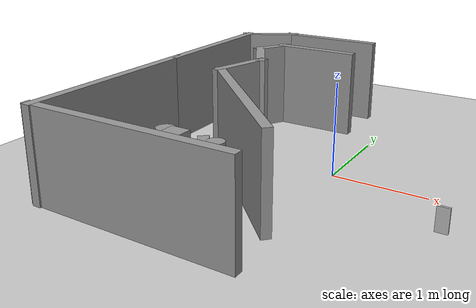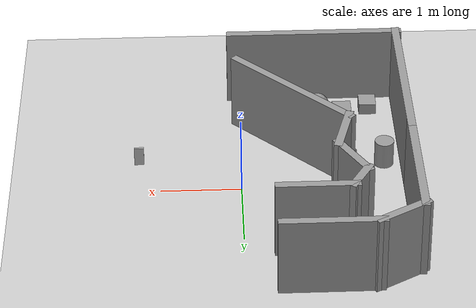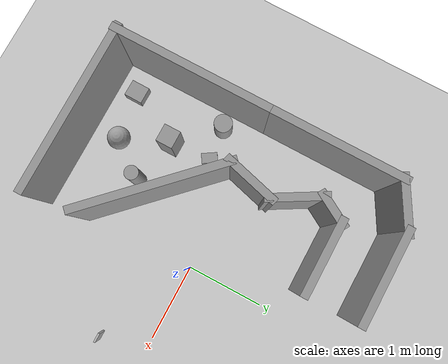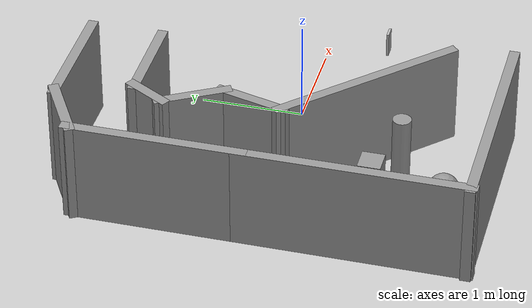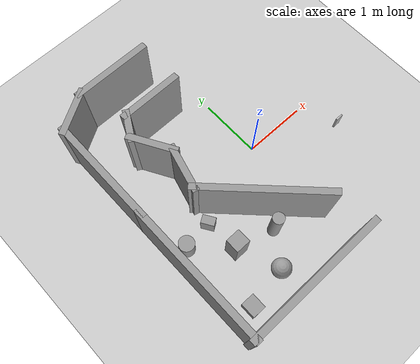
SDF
<sdf version="1.7">
 <world name="capstone_project">
  <scene>
   <ambient>0 0 0 1</ambient>
   <shadows>0</shadows>
   <grid>0</grid>
   <background>0.7 0.7 0.7 1</background>
  </scene>
  <light name="sun" type="directional">
   <pose>0 0 10 0 -0 0</pose>
   <diffuse>0.8 0.8 0.8 1</diffuse>
   <specular>0.1 0.1 0.1 1</specular>
   <attenuation>
    <range>1000</range>
    <constant>0.9</constant>
    <linear>0.01</linear>
    <quadratic>0.001</quadratic>
   </attenuation>
   <direction>-0.5 0.5 -1</direction>
   <spot><inner_angle>0</inner_angle><outer_angle>0</outer_angle><falloff>0</falloff></spot>
  </light>
  <gravity>0 0 -9.8</gravity>
  <magnetic_field>6e-06 2.3e-05 -4.2e-05</magnetic_field>
  <atmosphere type="adiabatic"/>
  <physics name="default_physics" default="0" type="ode">
   <max_step_size>0.001</max_step_size>
   <real_time_factor>1</real_time_factor>
   <real_time_update_rate>1000</real_time_update_rate>
  </physics>
  <spherical_coordinates>
   <surface_model>EARTH_WGS84</surface_model>
   <latitude_deg>0</latitude_deg>
   <longitude_deg>0</longitude_deg>
   <elevation>0</elevation>
   <heading_deg>0</heading_deg>
  </spherical_coordinates>
  <light name="user_point_light_2" type="point">
   <pose>-0.948146 0.604519 1 0 -0 0</pose>
   <diffuse>0.5 0.5 0.5 1</diffuse>
   <specular>0.1 0.1 0.1 1</specular>
   <attenuation>
    <range>20</range>
    <constant>0.5</constant>
    <linear>0.01</linear>
    <quadratic>0.001</quadratic>
   </attenuation>
   <cast_shadows>0</cast_shadows>
   <direction>0 0 -1</direction>
   <spot><inner_angle>0</inner_angle><outer_angle>0</outer_angle><falloff>0</falloff></spot>
  </light>
  <light name="user_point_light_6" type="point">
   <pose>1.63854 1.69565 1 0 -0 0</pose>
   <diffuse>0.5 0.5 0.5 1</diffuse>
   <specular>0.1 0.1 0.1 1</specular>
   <attenuation>
    <range>20</range>
    <constant>0.5</constant>
    <linear>0.01</linear>
    <quadratic>0.001</quadratic>
   </attenuation>
   <cast_shadows>0</cast_shadows>
   <direction>0 0 -1</direction>
   <spot><inner_angle>0</inner_angle><outer_angle>0</outer_angle><falloff>0</falloff></spot>
  </light>
  <light name="user_point_light_7" type="point">
   <pose>0.42 -3.31 1 0 -0 0</pose>
   <diffuse>0.5 0.5 0.5 1</diffuse>
   <specular>0.1 0.1 0.1 1</specular>
   <attenuation>
    <range>20</range>
    <constant>0.5</constant>
    <linear>0.01</linear>
    <quadratic>0.001</quadratic>
   </attenuation>
   <cast_shadows>0</cast_shadows>
   <direction>0 0 -1</direction>
   <spot><inner_angle>0</inner_angle><outer_angle>0</outer_angle><falloff>0</falloff></spot>
  </light>
  <light name="user_point_light_8" type="point">
   <pose>-1.8 1.5 1 0 -0 0</pose>
   <diffuse>0.5 0.5 0.5 1</diffuse>
   <specular>0.1 0.1 0.1 1</specular>
   <attenuation>
    <range>20</range>
    <constant>0.5</constant>
    <linear>0.01</linear>
    <quadratic>0.001</quadratic>
   </attenuation>
   <cast_shadows>0</cast_shadows>
   <direction>0 0 -1</direction>
   <spot><inner_angle>0</inner_angle><outer_angle>0</outer_angle><falloff>0</falloff></spot>
  </light>
  <model name="walls">
   <link name="Wall_10">
    <pose>0.35664 -0.75882 0 0 -0 2.35619</pose>
    <inertial>
     <mass>1</mass>
     <inertia><ixx>1</ixx><ixy>0</ixy><ixz>0</ixz><iyy>1</iyy><iyz>0</iyz><izz>1</izz></inertia>
    </inertial>
    <visual name="Wall_10_Visual">
     <pose>0 0 0.5 0 -0 0</pose>
     <geometry><box><size>2 0.1 1</size></box></geometry>
     <material>
      <script><uri>file://media/materials/scripts/gazebo.material</uri><name>Gazebo/Grey</name></script>
      <ambient>1 1 1 1</ambient>
      <shader type="pixel"><normal_map>__default__</normal_map></shader>
     </material>
    </visual>
    <collision name="Wall_10_Collision">
     <pose>0 0 0.5 0 -0 0</pose>
     <geometry><box><size>2 0.1 1</size></box></geometry>
     <surface>
      <friction>
       <ode><mu>1</mu><mu2>1</mu2><fdir1>0 0 0</fdir1><slip1>0</slip1><slip2>0</slip2></ode>
       <torsional>
        <coefficient>1</coefficient>
        <patch_radius>0</patch_radius>
        <surface_radius>0</surface_radius>
        <use_patch_radius>1</use_patch_radius>
        <ode><slip>0</slip></ode>
       </torsional>
      </friction>
      <bounce><restitution_coefficient>0</restitution_coefficient><threshold>1e+06</threshold></bounce>
      <contact>
       <collide_without_contact>0</collide_without_contact>
       <collide_without_contact_bitmask>1</collide_without_contact_bitmask>
       <collide_bitmask>1</collide_bitmask>
       <ode>
        <soft_cfm>0</soft_cfm>
        <soft_erp>0.2</soft_erp>
        <kp>1e+13</kp>
        <kd>1</kd>
        <max_vel>0.01</max_vel>
        <min_depth>0</min_depth>
       </ode>
       <bullet>
        <split_impulse>1</split_impulse>
        <split_impulse_penetration_threshold>-0.01</split_impulse_penetration_threshold>
        <soft_cfm>0</soft_cfm>
        <soft_erp>0.2</soft_erp>
        <kp>1e+13</kp>
        <kd>1</kd>
       </bullet>
      </contact>
     </surface>
    </collision>
   </link>
   <link name="Wall_12">
    <pose>0.01372 -2.01873 0 0 -0 3.14159</pose>
    <visual name="Wall_12_Visual">
     <pose>0 0 0.5 0 -0 0</pose>
     <geometry><box><size>2.26002 0.1 1</size></box></geometry>
     <material>
      <script><uri>file://media/materials/scripts/gazebo.material</uri><name>Gazebo/Grey</name></script>
      <ambient>1 1 1 1</ambient>
      <shader type="pixel"/>
     </material>
    </visual>
    <collision name="Wall_12_Collision">
     <pose>0 0 0.5 0 -0 0</pose>
     <geometry><box><size>2.26002 0.1 1</size></box></geometry>
     <surface>
      <friction>
       <ode><mu>1</mu><mu2>1</mu2><fdir1>0 0 0</fdir1><slip1>0</slip1><slip2>0</slip2></ode>
       <torsional>
        <coefficient>1</coefficient>
        <patch_radius>0</patch_radius>
        <surface_radius>0</surface_radius>
        <use_patch_radius>1</use_patch_radius>
        <ode><slip>0</slip></ode>
       </torsional>
      </friction>
      <bounce><restitution_coefficient>0</restitution_coefficient><threshold>1e+06</threshold></bounce>
      <contact>
       <collide_without_contact>0</collide_without_contact>
       <collide_without_contact_bitmask>1</collide_without_contact_bitmask>
       <collide_bitmask>1</collide_bitmask>
       <ode>
        <soft_cfm>0</soft_cfm>
        <soft_erp>0.2</soft_erp>
        <kp>1e+13</kp>
        <kd>1</kd>
        <max_vel>0.01</max_vel>
        <min_depth>0</min_depth>
       </ode>
       <bullet>
        <split_impulse>1</split_impulse>
        <split_impulse_penetration_threshold>-0.01</split_impulse_penetration_threshold>
        <soft_cfm>0</soft_cfm>
        <soft_erp>0.2</soft_erp>
        <kp>1e+13</kp>
        <kd>1</kd>
       </bullet>
      </contact>
     </surface>
    </collision>
   </link>
   <link name="Wall_13">
    <pose>-1.04128 -0.958726 0 0 -0 1.5708</pose>
    <visual name="Wall_13_Visual">
     <pose>0 0 0.5 0 -0 0</pose>
     <geometry><box><size>2.25 0.1 1</size></box></geometry>
     <material>
      <script><uri>file://media/materials/scripts/gazebo.material</uri><name>Gazebo/Grey</name></script>
      <ambient>1 1 1 1</ambient>
      <shader type="pixel"/>
     </material>
    </visual>
    <collision name="Wall_13_Collision">
     <pose>0 0 0.5 0 -0 0</pose>
     <geometry><box><size>2.25 0.1 1</size></box></geometry>
     <surface>
      <friction>
       <ode><mu>1</mu><mu2>1</mu2><fdir1>0 0 0</fdir1><slip1>0</slip1><slip2>0</slip2></ode>
       <torsional>
        <coefficient>1</coefficient>
        <patch_radius>0</patch_radius>
        <surface_radius>0</surface_radius>
        <use_patch_radius>1</use_patch_radius>
        <ode><slip>0</slip></ode>
       </torsional>
      </friction>
      <bounce><restitution_coefficient>0</restitution_coefficient><threshold>1e+06</threshold></bounce>
      <contact>
       <collide_without_contact>0</collide_without_contact>
       <collide_without_contact_bitmask>1</collide_without_contact_bitmask>
       <collide_bitmask>1</collide_bitmask>
       <ode>
        <soft_cfm>0</soft_cfm>
        <soft_erp>0.2</soft_erp>
        <kp>1e+13</kp>
        <kd>1</kd>
        <max_vel>0.01</max_vel>
        <min_depth>0</min_depth>
       </ode>
       <bullet>
        <split_impulse>1</split_impulse>
        <split_impulse_penetration_threshold>-0.01</split_impulse_penetration_threshold>
        <soft_cfm>0</soft_cfm>
        <soft_erp>0.2</soft_erp>
        <kp>1e+13</kp>
        <kd>1</kd>
       </bullet>
      </contact>
     </surface>
    </collision>
   </link>
   <link name="Wall_19">
    <pose>-1.04128 0.891274 0 0 -0 1.5708</pose>
    <visual name="Wall_19_Visual">
     <pose>0 0 0.5 0 -0 0</pose>
     <geometry><box><size>1.75 0.1 1</size></box></geometry>
     <material>
      <script><uri>file://media/materials/scripts/gazebo.material</uri><name>Gazebo/Grey</name></script>
      <ambient>1 1 1 1</ambient>
      <shader type="pixel"/>
     </material>
    </visual>
    <collision name="Wall_19_Collision">
     <pose>0 0 0.5 0 -0 0</pose>
     <geometry><box><size>1.75 0.1 1</size></box></geometry>
     <surface>
      <friction>
       <ode><mu>1</mu><mu2>1</mu2><fdir1>0 0 0</fdir1><slip1>0</slip1><slip2>0</slip2></ode>
       <torsional>
        <coefficient>1</coefficient>
        <patch_radius>0</patch_radius>
        <surface_radius>0</surface_radius>
        <use_patch_radius>1</use_patch_radius>
        <ode><slip>0</slip></ode>
       </torsional>
      </friction>
      <bounce><restitution_coefficient>0</restitution_coefficient><threshold>1e+06</threshold></bounce>
      <contact>
       <collide_without_contact>0</collide_without_contact>
       <collide_without_contact_bitmask>1</collide_without_contact_bitmask>
       <collide_bitmask>1</collide_bitmask>
       <ode>
        <soft_cfm>0</soft_cfm>
        <soft_erp>0.2</soft_erp>
        <kp>1e+13</kp>
        <kd>1</kd>
        <max_vel>0.01</max_vel>
        <min_depth>0</min_depth>
       </ode>
       <bullet>
        <split_impulse>1</split_impulse>
        <split_impulse_penetration_threshold>-0.01</split_impulse_penetration_threshold>
        <soft_cfm>0</soft_cfm>
        <soft_erp>0.2</soft_erp>
        <kp>1e+13</kp>
        <kd>1</kd>
       </bullet>
      </contact>
     </surface>
    </collision>
   </link>
   <link name="Wall_21">
    <pose>-0.781472 1.84127 0 0 -0 0.523599</pose>
    <visual name="Wall_21_Visual">
     <pose>0 0 0.5 0 -0 0</pose>
     <geometry><box><size>0.75 0.1 1</size></box></geometry>
     <material>
      <script><uri>file://media/materials/scripts/gazebo.material</uri><name>Gazebo/Grey</name></script>
      <ambient>1 1 1 1</ambient>
      <shader type="pixel"/>
     </material>
    </visual>
    <collision name="Wall_21_Collision">
     <pose>0 0 0.5 0 -0 0</pose>
     <geometry><box><size>0.75 0.1 1</size></box></geometry>
     <surface>
      <friction>
       <ode><mu>1</mu><mu2>1</mu2><fdir1>0 0 0</fdir1><slip1>0</slip1><slip2>0</slip2></ode>
       <torsional>
        <coefficient>1</coefficient>
        <patch_radius>0</patch_radius>
        <surface_radius>0</surface_radius>
        <use_patch_radius>1</use_patch_radius>
        <ode><slip>0</slip></ode>
       </torsional>
      </friction>
      <bounce><restitution_coefficient>0</restitution_coefficient><threshold>1e+06</threshold></bounce>
      <contact>
       <collide_without_contact>0</collide_without_contact>
       <collide_without_contact_bitmask>1</collide_without_contact_bitmask>
       <collide_bitmask>1</collide_bitmask>
       <ode>
        <soft_cfm>0</soft_cfm>
        <soft_erp>0.2</soft_erp>
        <kp>1e+13</kp>
        <kd>1</kd>
        <max_vel>0.01</max_vel>
        <min_depth>0</min_depth>
       </ode>
       <bullet>
        <split_impulse>1</split_impulse>
        <split_impulse_penetration_threshold>-0.01</split_impulse_penetration_threshold>
        <soft_cfm>0</soft_cfm>
        <soft_erp>0.2</soft_erp>
        <kp>1e+13</kp>
        <kd>1</kd>
       </bullet>
      </contact>
     </surface>
    </collision>
   </link>
   <link name="Wall_22">
    <pose>0.028335 1.99127 0 0 -0 0</pose>
    <visual name="Wall_22_Visual">
     <pose>0 0 0.5 0 -0 0</pose>
     <geometry><box><size>1.25 0.1 1</size></box></geometry>
     <material>
      <script><uri>file://media/materials/scripts/gazebo.material</uri><name>Gazebo/Grey</name></script>
      <ambient>1 1 1 1</ambient>
      <shader type="pixel"/>
     </material>
    </visual>
    <collision name="Wall_22_Collision">
     <pose>0 0 0.5 0 -0 0</pose>
     <geometry><box><size>1.25 0.1 1</size></box></geometry>
     <surface>
      <friction>
       <ode><mu>1</mu><mu2>1</mu2><fdir1>0 0 0</fdir1><slip1>0</slip1><slip2>0</slip2></ode>
       <torsional>
        <coefficient>1</coefficient>
        <patch_radius>0</patch_radius>
        <surface_radius>0</surface_radius>
        <use_patch_radius>1</use_patch_radius>
        <ode><slip>0</slip></ode>
       </torsional>
      </friction>
      <bounce><restitution_coefficient>0</restitution_coefficient><threshold>1e+06</threshold></bounce>
      <contact>
       <collide_without_contact>0</collide_without_contact>
       <collide_without_contact_bitmask>1</collide_without_contact_bitmask>
       <collide_bitmask>1</collide_bitmask>
       <ode>
        <soft_cfm>0</soft_cfm>
        <soft_erp>0.2</soft_erp>
        <kp>1e+13</kp>
        <kd>1</kd>
        <max_vel>0.01</max_vel>
        <min_depth>0</min_depth>
       </ode>
       <bullet>
        <split_impulse>1</split_impulse>
        <split_impulse_penetration_threshold>-0.01</split_impulse_penetration_threshold>
        <soft_cfm>0</soft_cfm>
        <soft_erp>0.2</soft_erp>
        <kp>1e+13</kp>
        <kd>1</kd>
       </bullet>
      </contact>
     </surface>
    </collision>
   </link>
   <link name="Wall_24">
    <pose>-0.219788 0.185031 0 0 -0 1.309</pose>
    <visual name="Wall_24_Visual">
     <pose>0 0 0.5 0 -0 0</pose>
     <geometry><box><size>0.75 0.1 1</size></box></geometry>
     <material>
      <script><uri>file://media/materials/scripts/gazebo.material</uri><name>Gazebo/Grey</name></script>
      <ambient>1 1 1 1</ambient>
      <shader type="pixel"/>
     </material>
    </visual>
    <collision name="Wall_24_Collision">
     <pose>0 0 0.5 0 -0 0</pose>
     <geometry><box><size>0.75 0.1 1</size></box></geometry>
     <surface>
      <friction>
       <ode><mu>1</mu><mu2>1</mu2><fdir1>0 0 0</fdir1><slip1>0</slip1><slip2>0</slip2></ode>
       <torsional>
        <coefficient>1</coefficient>
        <patch_radius>0</patch_radius>
        <surface_radius>0</surface_radius>
        <use_patch_radius>1</use_patch_radius>
        <ode><slip>0</slip></ode>
       </torsional>
      </friction>
      <bounce><restitution_coefficient>0</restitution_coefficient><threshold>1e+06</threshold></bounce>
      <contact>
       <collide_without_contact>0</collide_without_contact>
       <collide_without_contact_bitmask>1</collide_without_contact_bitmask>
       <collide_bitmask>1</collide_bitmask>
       <ode>
        <soft_cfm>0</soft_cfm>
        <soft_erp>0.2</soft_erp>
        <kp>1e+13</kp>
        <kd>1</kd>
        <max_vel>0.01</max_vel>
        <min_depth>0</min_depth>
       </ode>
       <bullet>
        <split_impulse>1</split_impulse>
        <split_impulse_penetration_threshold>-0.01</split_impulse_penetration_threshold>
        <soft_cfm>0</soft_cfm>
        <soft_erp>0.2</soft_erp>
        <kp>1e+13</kp>
        <kd>1</kd>
       </bullet>
      </contact>
     </surface>
    </collision>
   </link>
   <link name="Wall_25">
    <pose>-0.292142 0.734617 0 0 -0 2.0944</pose>
    <visual name="Wall_25_Visual">
     <pose>0 0 0.5 0 -0 0</pose>
     <geometry><box><size>0.75 0.1 1</size></box></geometry>
     <material>
      <script><uri>file://media/materials/scripts/gazebo.material</uri><name>Gazebo/Grey</name></script>
      <ambient>1 1 1 1</ambient>
      <shader type="pixel"/>
     </material>
    </visual>
    <collision name="Wall_25_Collision">
     <pose>0 0 0.5 0 -0 0</pose>
     <geometry><box><size>0.75 0.1 1</size></box></geometry>
     <surface>
      <friction>
       <ode><mu>1</mu><mu2>1</mu2><fdir1>0 0 0</fdir1><slip1>0</slip1><slip2>0</slip2></ode>
       <torsional>
        <coefficient>1</coefficient>
        <patch_radius>0</patch_radius>
        <surface_radius>0</surface_radius>
        <use_patch_radius>1</use_patch_radius>
        <ode><slip>0</slip></ode>
       </torsional>
      </friction>
      <bounce><restitution_coefficient>0</restitution_coefficient><threshold>1e+06</threshold></bounce>
      <contact>
       <collide_without_contact>0</collide_without_contact>
       <collide_without_contact_bitmask>1</collide_without_contact_bitmask>
       <collide_bitmask>1</collide_bitmask>
       <ode>
        <soft_cfm>0</soft_cfm>
        <soft_erp>0.2</soft_erp>
        <kp>1e+13</kp>
        <kd>1</kd>
        <max_vel>0.01</max_vel>
        <min_depth>0</min_depth>
       </ode>
       <bullet>
        <split_impulse>1</split_impulse>
        <split_impulse_penetration_threshold>-0.01</split_impulse_penetration_threshold>
        <soft_cfm>0</soft_cfm>
        <soft_erp>0.2</soft_erp>
        <kp>1e+13</kp>
        <kd>1</kd>
       </bullet>
      </contact>
     </surface>
    </collision>
   </link>
   <link name="Wall_26">
    <pose>-0.354642 1.14598 0 0 -0 1.0472</pose>
    <visual name="Wall_26_Visual">
     <pose>0 0 0.5 0 -0 0</pose>
     <geometry><box><size>0.5 0.1 1</size></box></geometry>
     <material>
      <script><uri>file://media/materials/scripts/gazebo.material</uri><name>Gazebo/Grey</name></script>
      <ambient>1 1 1 1</ambient>
      <shader type="pixel"/>
     </material>
    </visual>
    <collision name="Wall_26_Collision">
     <pose>0 0 0.5 0 -0 0</pose>
     <geometry><box><size>0.5 0.1 1</size></box></geometry>
     <surface>
      <friction>
       <ode><mu>1</mu><mu2>1</mu2><fdir1>0 0 0</fdir1><slip1>0</slip1><slip2>0</slip2></ode>
       <torsional>
        <coefficient>1</coefficient>
        <patch_radius>0</patch_radius>
        <surface_radius>0</surface_radius>
        <use_patch_radius>1</use_patch_radius>
        <ode><slip>0</slip></ode>
       </torsional>
      </friction>
      <bounce><restitution_coefficient>0</restitution_coefficient><threshold>1e+06</threshold></bounce>
      <contact>
       <collide_without_contact>0</collide_without_contact>
       <collide_without_contact_bitmask>1</collide_without_contact_bitmask>
       <collide_bitmask>1</collide_bitmask>
       <ode>
        <soft_cfm>0</soft_cfm>
        <soft_erp>0.2</soft_erp>
        <kp>1e+13</kp>
        <kd>1</kd>
        <max_vel>0.01</max_vel>
        <min_depth>0</min_depth>
       </ode>
       <bullet>
        <split_impulse>1</split_impulse>
        <split_impulse_penetration_threshold>-0.01</split_impulse_penetration_threshold>
        <soft_cfm>0</soft_cfm>
        <soft_erp>0.2</soft_erp>
        <kp>1e+13</kp>
        <kd>1</kd>
       </bullet>
      </contact>
     </surface>
    </collision>
   </link>
   <link name="Wall_27">
    <pose>0.157858 1.29753 0 0 -0 0</pose>
    <visual name="Wall_27_Visual">
     <pose>0 0 0.5 0 -0 0</pose>
     <geometry><box><size>1 0.1 1</size></box></geometry>
     <material>
      <script><uri>file://media/materials/scripts/gazebo.material</uri><name>Gazebo/Grey</name></script>
      <ambient>1 1 1 1</ambient>
      <shader type="pixel"/>
     </material>
    </visual>
    <collision name="Wall_27_Collision">
     <pose>0 0 0.5 0 -0 0</pose>
     <geometry><box><size>1 0.1 1</size></box></geometry>
     <surface>
      <friction>
       <ode><mu>1</mu><mu2>1</mu2><fdir1>0 0 0</fdir1><slip1>0</slip1><slip2>0</slip2></ode>
       <torsional>
        <coefficient>1</coefficient>
        <patch_radius>0</patch_radius>
        <surface_radius>0</surface_radius>
        <use_patch_radius>1</use_patch_radius>
        <ode><slip>0</slip></ode>
       </torsional>
      </friction>
      <bounce><restitution_coefficient>0</restitution_coefficient><threshold>1e+06</threshold></bounce>
      <contact>
       <collide_without_contact>0</collide_without_contact>
       <collide_without_contact_bitmask>1</collide_without_contact_bitmask>
       <collide_bitmask>1</collide_bitmask>
       <ode>
        <soft_cfm>0</soft_cfm>
        <soft_erp>0.2</soft_erp>
        <kp>1e+13</kp>
        <kd>1</kd>
        <max_vel>0.01</max_vel>
        <min_depth>0</min_depth>
       </ode>
       <bullet>
        <split_impulse>1</split_impulse>
        <split_impulse_penetration_threshold>-0.01</split_impulse_penetration_threshold>
        <soft_cfm>0</soft_cfm>
        <soft_erp>0.2</soft_erp>
        <kp>1e+13</kp>
        <kd>1</kd>
       </bullet>
      </contact>
     </surface>
    </collision>
   </link>
   <static>1</static>
   <pose>-1.00889 -0.012836 0 0 -0 0</pose>
  </model>
  <model name="ground">
   <static>1</static>
   <link name="ground_link">
    <collision name="ground_collision">
     <geometry><plane><normal>0 0 1</normal><size>4 4</size></plane></geometry>
     <surface><friction><ode><mu>100</mu><mu2>50</mu2></ode></friction></surface>
    </collision>
    <visual name="ground_visual">
     <cast_shadows>0</cast_shadows>
     <geometry><plane><normal>0 0 1</normal><size>4 4</size></plane></geometry>
     <material><script><uri>model://ground</uri><name>ground</name></script></material>
    </visual>
   </link>
   <pose>0 0 0 0 -0 1.5708</pose>
  </model>
  <model name="traffic_sign">
   <link name="box">
    <inertial>
     <mass>1</mass>
     <inertia><ixx>1</ixx><ixy>0</ixy><ixz>0</ixz><iyy>1</iyy><iyz>0</iyz><izz>1</izz></inertia>
    </inertial>
    <visual name="visual">
     <geometry><box><size>0.12 0.025 0.25</size></box></geometry>
     <material>
      <script><uri>model://traffic_sign</uri><name>traffic_sign</name></script>
      <shader type="pixel"><normal_map>__default__</normal_map></shader>
     </material>
    </visual>
    <collision name="collision">
     <geometry><box><size>0.12 0.025 0.25</size></box></geometry>
     <surface>
      <friction>
       <ode><mu>1</mu><mu2>1</mu2><fdir1>0 0 0</fdir1><slip1>0</slip1><slip2>0</slip2></ode>
       <torsional>
        <coefficient>1</coefficient>
        <patch_radius>0</patch_radius>
        <surface_radius>0</surface_radius>
        <use_patch_radius>1</use_patch_radius>
        <ode><slip>0</slip></ode>
       </torsional>
      </friction>
      <bounce><restitution_coefficient>0</restitution_coefficient><threshold>1e+06</threshold></bounce>
      <contact>
       <collide_without_contact>0</collide_without_contact>
       <collide_without_contact_bitmask>1</collide_without_contact_bitmask>
       <collide_bitmask>1</collide_bitmask>
       <ode>
        <soft_cfm>0</soft_cfm>
        <soft_erp>0.2</soft_erp>
        <kp>1e+13</kp>
        <kd>1</kd>
        <max_vel>0.01</max_vel>
        <min_depth>0</min_depth>
       </ode>
       <bullet>
        <split_impulse>1</split_impulse>
        <split_impulse_penetration_threshold>-0.01</split_impulse_penetration_threshold>
        <soft_cfm>0</soft_cfm>
        <soft_erp>0.2</soft_erp>
        <kp>1e+13</kp>
        <kd>1</kd>
       </bullet>
      </contact>
     </surface>
    </collision>
   </link>
   <static>1</static>
   <pose>1.2689 -0.587152 0.126884 0 -0 0</pose>
  </model>
  <model name="obstacles">
   <link name="link">
    <inertial>
     <mass>1</mass>
     <inertia>
      <ixx>0.166667</ixx>
      <ixy>0</ixy>
      <ixz>0</ixz>
      <iyy>0.166667</iyy>
      <iyz>0</iyz>
      <izz>0.166667</izz>
     </inertia>
    </inertial>
    <pose>-1.33179 -0.434126 -0.357736 0 -0 0.564849</pose>
    <visual name="visual">
     <geometry><box><size>0.130992 0.203212 0.284528</size></box></geometry>
     <material>
      <script><name>Gazebo/Grey</name><uri>file://media/materials/scripts/gazebo.material</uri></script>
      <shader type="pixel"><normal_map>__default__</normal_map></shader>
      <ambient>0.3 0.3 0.3 1</ambient>
      <diffuse>0.7 0.7 0.7 1</diffuse>
      <specular>0.01 0.01 0.01 1</specular>
      <emissive>0 0 0 1</emissive>
     </material>
    </visual>
    <collision name="collision">
     <geometry><box><size>0.130992 0.203212 0.284528</size></box></geometry>
     <surface>
      <friction>
       <ode><mu>1</mu><mu2>1</mu2><fdir1>0 0 0</fdir1><slip1>0</slip1><slip2>0</slip2></ode>
       <torsional>
        <coefficient>1</coefficient>
        <patch_radius>0</patch_radius>
        <surface_radius>0</surface_radius>
        <use_patch_radius>1</use_patch_radius>
        <ode><slip>0</slip></ode>
       </torsional>
      </friction>
      <bounce><restitution_coefficient>0</restitution_coefficient><threshold>1e+06</threshold></bounce>
      <contact>
       <collide_without_contact>0</collide_without_contact>
       <collide_without_contact_bitmask>1</collide_without_contact_bitmask>
       <collide_bitmask>1</collide_bitmask>
       <ode>
        <soft_cfm>0</soft_cfm>
        <soft_erp>0.2</soft_erp>
        <kp>1e+13</kp>
        <kd>1</kd>
        <max_vel>0.01</max_vel>
        <min_depth>0</min_depth>
       </ode>
       <bullet>
        <split_impulse>1</split_impulse>
        <split_impulse_penetration_threshold>-0.01</split_impulse_penetration_threshold>
        <soft_cfm>0</soft_cfm>
        <soft_erp>0.2</soft_erp>
        <kp>1e+13</kp>
        <kd>1</kd>
       </bullet>
      </contact>
     </surface>
    </collision>
   </link>
   <link name="link_2">
    <inertial>
     <mass>1</mass>
     <inertia><ixx>0.145833</ixx><ixy>0</ixy><ixz>0</ixz><iyy>0.145833</iyy><iyz>0</iyz><izz>0.125</izz></inertia>
    </inertial>
    <pose>-1.79426 -0.486175 -0.33 0 -0 0</pose>
    <visual name="visual">
     <geometry><cylinder><radius>0.12</radius><length>0.34</length></cylinder></geometry>
     <material>
      <lighting>1</lighting>
      <script><uri>file://media/materials/scripts/gazebo.material</uri><name>Gazebo/Grey</name></script>
      <shader type="pixel"><normal_map>__default__</normal_map></shader>
      <ambient>0.3 0.3 0.3 1</ambient>
      <diffuse>0.7 0.7 0.7 1</diffuse>
      <specular>0.01 0.01 0.01 1</specular>
      <emissive>0 0 0 1</emissive>
     </material>
    </visual>
    <collision name="collision">
     <geometry><cylinder><radius>0.12</radius><length>0.34</length></cylinder></geometry>
     <surface>
      <friction>
       <ode><mu>1</mu><mu2>1</mu2><fdir1>0 0 0</fdir1><slip1>0</slip1><slip2>0</slip2></ode>
       <torsional>
        <coefficient>1</coefficient>
        <patch_radius>0</patch_radius>
        <surface_radius>0</surface_radius>
        <use_patch_radius>1</use_patch_radius>
        <ode><slip>0</slip></ode>
       </torsional>
      </friction>
      <bounce><restitution_coefficient>0</restitution_coefficient><threshold>1e+06</threshold></bounce>
      <contact>
       <collide_without_contact>0</collide_without_contact>
       <collide_without_contact_bitmask>1</collide_without_contact_bitmask>
       <collide_bitmask>1</collide_bitmask>
       <ode>
        <soft_cfm>0</soft_cfm>
        <soft_erp>0.2</soft_erp>
        <kp>1e+13</kp>
        <kd>1</kd>
        <max_vel>0.01</max_vel>
        <min_depth>0</min_depth>
       </ode>
       <bullet>
        <split_impulse>1</split_impulse>
        <split_impulse_penetration_threshold>-0.01</split_impulse_penetration_threshold>
        <soft_cfm>0</soft_cfm>
        <soft_erp>0.2</soft_erp>
        <kp>1e+13</kp>
        <kd>1</kd>
       </bullet>
      </contact>
     </surface>
    </collision>
   </link>
   <link name="link_3">
    <inertial>
     <mass>1</mass>
     <inertia>
      <ixx>0.166667</ixx>
      <ixy>0</ixy>
      <ixz>0</ixz>
      <iyy>0.166667</iyy>
      <iyz>0</iyz>
      <izz>0.166667</izz>
     </inertia>
    </inertial>
    <pose>-1.28907 -0.972289 -0.224349 0 -0 0</pose>
    <visual name="visual">
     <geometry><box><size>0.231874 0.221189 0.551301</size></box></geometry>
     <material>
      <lighting>1</lighting>
      <script><uri>file://media/materials/scripts/gazebo.material</uri><name>Gazebo/Grey</name></script>
      <shader type="pixel"><normal_map>__default__</normal_map></shader>
      <ambient>0.3 0.3 0.3 1</ambient>
      <diffuse>0.7 0.7 0.7 1</diffuse>
      <specular>0.01 0.01 0.01 1</specular>
      <emissive>0 0 0 1</emissive>
     </material>
    </visual>
    <collision name="collision">
     <geometry><box><size>0.231874 0.221189 0.551301</size></box></geometry>
     <surface>
      <friction>
       <ode><mu>1</mu><mu2>1</mu2><fdir1>0 0 0</fdir1><slip1>0</slip1><slip2>0</slip2></ode>
       <torsional>
        <coefficient>1</coefficient>
        <patch_radius>0</patch_radius>
        <surface_radius>0</surface_radius>
        <use_patch_radius>1</use_patch_radius>
        <ode><slip>0</slip></ode>
       </torsional>
      </friction>
      <bounce><restitution_coefficient>0</restitution_coefficient><threshold>1e+06</threshold></bounce>
      <contact>
       <collide_without_contact>0</collide_without_contact>
       <collide_without_contact_bitmask>1</collide_without_contact_bitmask>
       <collide_bitmask>1</collide_bitmask>
       <ode>
        <soft_cfm>0</soft_cfm>
        <soft_erp>0.2</soft_erp>
        <kp>1e+13</kp>
        <kd>1</kd>
        <max_vel>0.01</max_vel>
        <min_depth>0</min_depth>
       </ode>
       <bullet>
        <split_impulse>1</split_impulse>
        <split_impulse_penetration_threshold>-0.01</split_impulse_penetration_threshold>
        <soft_cfm>0</soft_cfm>
        <soft_erp>0.2</soft_erp>
        <kp>1e+13</kp>
        <kd>1</kd>
       </bullet>
      </contact>
     </surface>
    </collision>
   </link>
   <link name="link_4">
    <inertial>
     <mass>1</mass>
     <inertia><ixx>0.145833</ixx><ixy>0</ixy><ixz>0</ixz><iyy>0.145833</iyy><iyz>0</iyz><izz>0.125</izz></inertia>
    </inertial>
    <pose>-0.683413 -1.1301 -0.19 0 -0 0</pose>
    <visual name="visual">
     <geometry><cylinder><radius>0.09</radius><length>0.62</length></cylinder></geometry>
     <material>
      <lighting>1</lighting>
      <script><uri>file://media/materials/scripts/gazebo.material</uri><name>Gazebo/Grey</name></script>
      <shader type="pixel"><normal_map>__default__</normal_map></shader>
      <ambient>0.3 0.3 0.3 1</ambient>
      <diffuse>0.7 0.7 0.7 1</diffuse>
      <specular>0.01 0.01 0.01 1</specular>
      <emissive>0 0 0 1</emissive>
     </material>
    </visual>
    <collision name="collision">
     <geometry><cylinder><radius>0.09</radius><length>0.62</length></cylinder></geometry>
     <surface>
      <friction>
       <ode><mu>1</mu><mu2>1</mu2><fdir1>0 0 0</fdir1><slip1>0</slip1><slip2>0</slip2></ode>
       <torsional>
        <coefficient>1</coefficient>
        <patch_radius>0</patch_radius>
        <surface_radius>0</surface_radius>
        <use_patch_radius>1</use_patch_radius>
        <ode><slip>0</slip></ode>
       </torsional>
      </friction>
      <bounce><restitution_coefficient>0</restitution_coefficient><threshold>1e+06</threshold></bounce>
      <contact>
       <collide_without_contact>0</collide_without_contact>
       <collide_without_contact_bitmask>1</collide_without_contact_bitmask>
       <collide_bitmask>1</collide_bitmask>
       <ode>
        <soft_cfm>0</soft_cfm>
        <soft_erp>0.2</soft_erp>
        <kp>1e+13</kp>
        <kd>1</kd>
        <max_vel>0.01</max_vel>
        <min_depth>0</min_depth>
       </ode>
       <bullet>
        <split_impulse>1</split_impulse>
        <split_impulse_penetration_threshold>-0.01</split_impulse_penetration_threshold>
        <soft_cfm>0</soft_cfm>
        <soft_erp>0.2</soft_erp>
        <kp>1e+13</kp>
        <kd>1</kd>
       </bullet>
      </contact>
     </surface>
    </collision>
   </link>
   <link name="link_5">
    <inertial>
     <mass>1</mass>
     <inertia><ixx>0.1</ixx><ixy>0</ixy><ixz>0</ixz><iyy>0.1</iyy><iyz>0</iyz><izz>0.1</izz></inertia>
    </inertial>
    <pose>-1.02848 -1.61152 -0.35 0 -0 0</pose>
    <visual name="visual">
     <geometry><sphere><radius>0.15</radius></sphere></geometry>
     <material>
      <lighting>1</lighting>
      <script><uri>file://media/materials/scripts/gazebo.material</uri><name>Gazebo/Grey</name></script>
      <shader type="pixel"><normal_map>__default__</normal_map></shader>
      <ambient>0.3 0.3 0.3 1</ambient>
      <diffuse>0.7 0.7 0.7 1</diffuse>
      <specular>0.01 0.01 0.01 1</specular>
      <emissive>0 0 0 1</emissive>
     </material>
    </visual>
    <collision name="collision">
     <geometry><sphere><radius>0.15</radius></sphere></geometry>
     <surface>
      <friction>
       <ode><mu>1</mu><mu2>1</mu2><fdir1>0 0 0</fdir1><slip1>0</slip1><slip2>0</slip2></ode>
       <torsional>
        <coefficient>1</coefficient>
        <patch_radius>0</patch_radius>
        <surface_radius>0</surface_radius>
        <use_patch_radius>1</use_patch_radius>
        <ode><slip>0</slip></ode>
       </torsional>
      </friction>
      <bounce><restitution_coefficient>0</restitution_coefficient><threshold>1e+06</threshold></bounce>
      <contact>
       <collide_without_contact>0</collide_without_contact>
       <collide_without_contact_bitmask>1</collide_without_contact_bitmask>
       <collide_bitmask>1</collide_bitmask>
       <ode>
        <soft_cfm>0</soft_cfm>
        <soft_erp>0.2</soft_erp>
        <kp>1e+13</kp>
        <kd>1</kd>
        <max_vel>0.01</max_vel>
        <min_depth>0</min_depth>
       </ode>
       <bullet>
        <split_impulse>1</split_impulse>
        <split_impulse_penetration_threshold>-0.01</split_impulse_penetration_threshold>
        <soft_cfm>0</soft_cfm>
        <soft_erp>0.2</soft_erp>
        <kp>1e+13</kp>
        <kd>1</kd>
       </bullet>
      </contact>
     </surface>
    </collision>
   </link>
   <link name="link_6">
    <inertial>
     <mass>1</mass>
     <inertia>
      <ixx>0.166667</ixx>
      <ixy>0</ixy>
      <ixz>0</ixz>
      <iyy>0.166667</iyy>
      <iyz>0</iyz>
      <izz>0.166667</izz>
     </inertia>
    </inertial>
    <pose>-1.67923 -1.71215 -0.4268 0 -0 1.56162</pose>
    <visual name="visual">
     <geometry><box><size>0.245846 0.219412 0.146399</size></box></geometry>
     <material>
      <lighting>1</lighting>
      <script><uri>file://media/materials/scripts/gazebo.material</uri><name>Gazebo/Grey</name></script>
      <shader type="pixel"><normal_map>__default__</normal_map></shader>
      <ambient>0.3 0.3 0.3 1</ambient>
      <diffuse>0.7 0.7 0.7 1</diffuse>
      <specular>0.01 0.01 0.01 1</specular>
      <emissive>0 0 0 1</emissive>
     </material>
    </visual>
    <collision name="collision">
     <geometry><box><size>0.245846 0.219412 0.146399</size></box></geometry>
     <surface>
      <friction>
       <ode><mu>1</mu><mu2>1</mu2><fdir1>0 0 0</fdir1><slip1>0</slip1><slip2>0</slip2></ode>
       <torsional>
        <coefficient>1</coefficient>
        <patch_radius>0</patch_radius>
        <surface_radius>0</surface_radius>
        <use_patch_radius>1</use_patch_radius>
        <ode><slip>0</slip></ode>
       </torsional>
      </friction>
      <bounce><restitution_coefficient>0</restitution_coefficient><threshold>1e+06</threshold></bounce>
      <contact>
       <collide_without_contact>0</collide_without_contact>
       <collide_without_contact_bitmask>1</collide_without_contact_bitmask>
       <collide_bitmask>1</collide_bitmask>
       <ode>
        <soft_cfm>0</soft_cfm>
        <soft_erp>0.2</soft_erp>
        <kp>1e+13</kp>
        <kd>1</kd>
        <max_vel>0.01</max_vel>
        <min_depth>0</min_depth>
       </ode>
       <bullet>
        <split_impulse>1</split_impulse>
        <split_impulse_penetration_threshold>-0.01</split_impulse_penetration_threshold>
        <soft_cfm>0</soft_cfm>
        <soft_erp>0.2</soft_erp>
        <kp>1e+13</kp>
        <kd>1</kd>
       </bullet>
      </contact>
     </surface>
    </collision>
   </link>
   <static>0</static>
   <pose>0 0 0.5 0 -0 0</pose>
  </model>
 </world>
</sdf>
